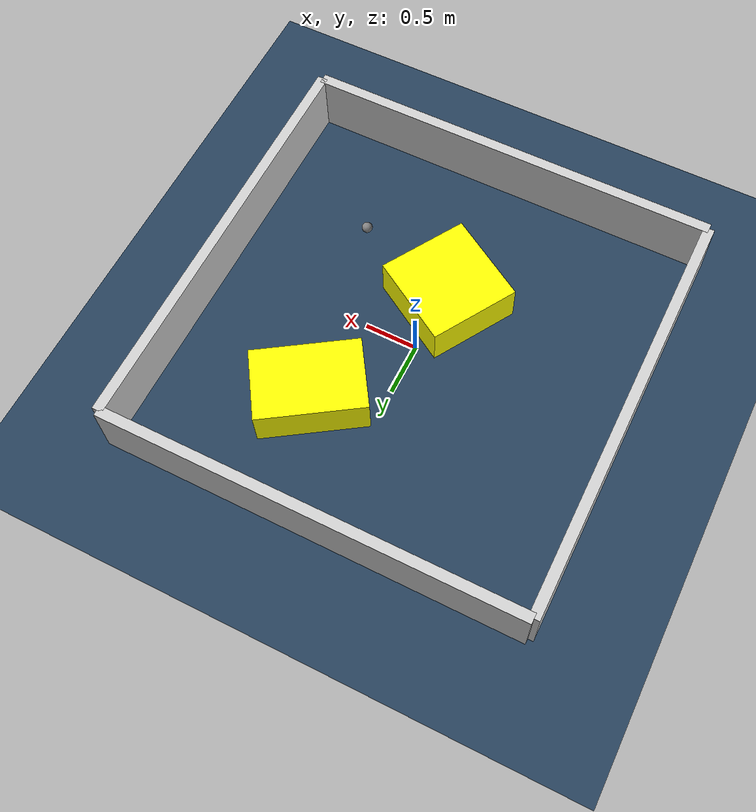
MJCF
<?xml version="1.0" ?>
<mujoco model="generated_environment">
  <option timestep="0.01" integrator="RK4" cone="elliptic"/>
  <default>
    <geom density="1"/>
  </default>
  <asset>
    <texture builtin="gradient" height="3072" rgb1="0.3 0.5 0.7" rgb2="0 0 0" type="skybox" width="512"/>
    <texture builtin="checker" height="300" mark="edge" markrgb="0.8 0.8 0.8" name="groundplane" rgb1="0.2 0.3 0.4" rgb2="0.1 0.2 0.3" type="2d" width="300"/>
    <material name="groundplane" reflectance="0.2" texrepeat="5 5" texture="groundplane" texuniform="true"/>
    <material name="robot" rgba="0.0 1.0 0.0 1"/>
  </asset>
  <worldbody>
    <light dir="0 0 -1" directional="true" pos="0 0 1.5"/>
    <geom condim="4" friction="1.0 0.005 0.001" material="groundplane" name="floor" size="0 0 0.05" type="plane"/>
    <body name="walls">
      <geom name="wall_1" condim="4" pos="-2.0 0.0 0.3" rgba="0.800000011920929 0.800000011920929 0.800000011920929 1.0" size="0.05 2.0 0.3" type="box"/>
      <geom name="wall_2" condim="4" pos="2.0 0.0 0.3" rgba="0.800000011920929 0.800000011920929 0.800000011920929 1.0" size="0.05 2.0 0.3" type="box"/>
      <geom name="wall_3" condim="4" pos="0.0 -2.0 0.3" rgba="0.800000011920929 0.800000011920929 0.800000011920929 1.0" size="2.0 0.05 0.3" type="box"/>
      <geom name="wall_4" condim="4" pos="0.0 2.0 0.3" rgba="0.800000011920929 0.800000011920929 0.800000011920929 1.0" size="2.0 0.05 0.3" type="box"/>
    </body>
    <body name="robot">
      <joint name="joint_x" type="slide" pos="0 0 0" axis="1 0 0"/>
      <joint name="joint_y" type="slide" pos="0 0 0" axis="0 1 0"/>
      <geom name="robot" type="sphere" pos="0.9405131829538114 -0.8647626757402166 0.2" size="0.05" mass="5." friction="1.0 0.005 0.0001" condim="4"/>
      <site name="sensor_ball"/>
    </body>
    <body name="obstacle_1_movable">
      <geom name="obstacle_1_movable" condim="4" pos="0.6157941280974344 0.8739379215925913 0.2" euler="0 0 123.16890778864811" friction="1.0 0.005 0.001" rgba="1 1 0 1" size="0.3401374081148593 0.5041310532577854 0.2" type="box" mass="0.1"/>
      <joint type="free"/>
    </body>
    <body name="obstacle_2_movable">
      <geom name="obstacle_2_movable" condim="4" pos="-0.04685411766198544 -0.5799779362052009 0.2" euler="0 0 148.6306081805823" friction="1.0 0.005 0.001" rgba="1 1 0 1" size="0.44233200142758966 0.43410360232622003 0.2" type="box" mass="0.1"/>
      <joint type="free"/>
    </body>
  </worldbody>
  <actuator>
    <motor name="actuator_x" joint="joint_x" gear="1" ctrlrange="-1 1"/>
    <motor name="actuator_y" joint="joint_y" gear="1" ctrlrange="-1 1"/>
  </actuator>
</mujoco>
